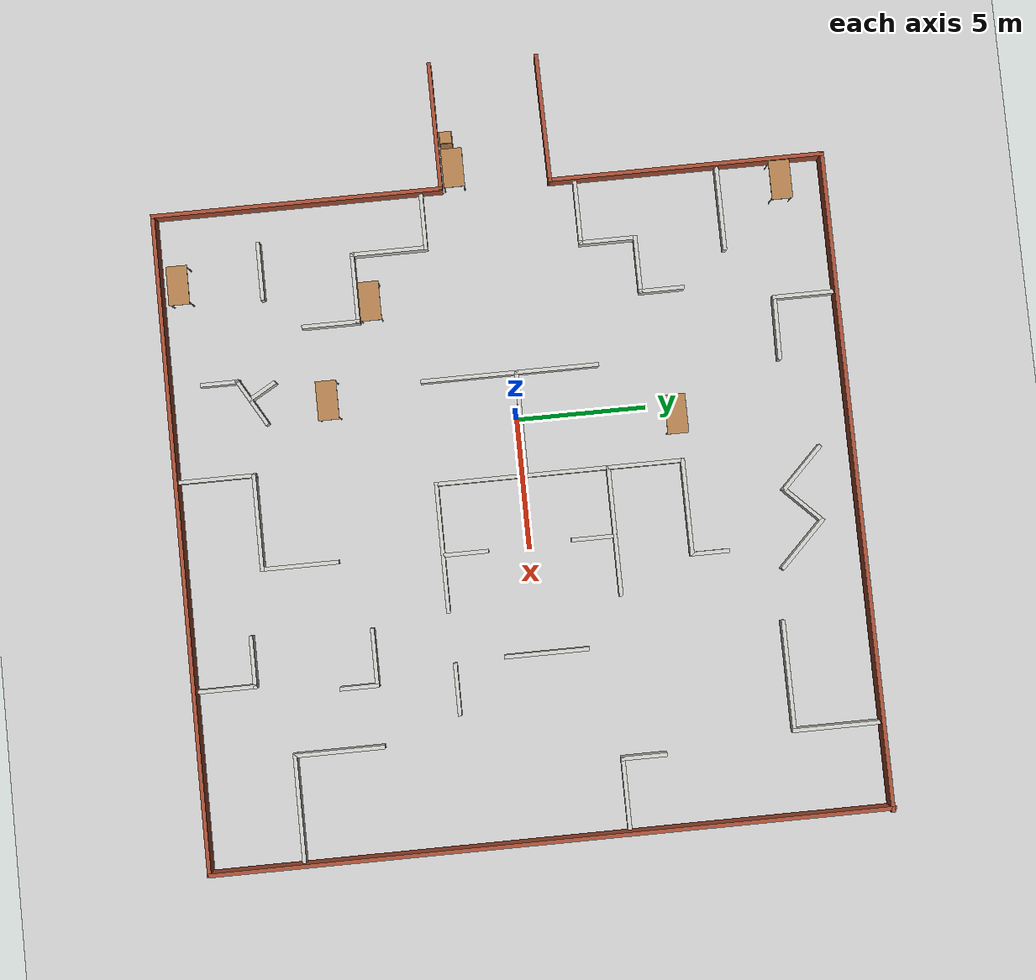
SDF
<sdf version="1.7">
 <world name="default">
  <model name="ground_plane">
   <static>1</static>
   <link name="link">
    <collision name="collision">
     <geometry><plane><normal>0 0 1</normal><size>100 100</size></plane></geometry>
     <surface><friction><ode><mu>100</mu><mu2>50</mu2></ode></friction></surface>
    </collision>
    <visual name="visual">
     <cast_shadows>0</cast_shadows>
     <geometry><plane><normal>0 0 1</normal><size>100 100</size></plane></geometry>
     <material>
      <script><uri>file://media/materials/scripts/gazebo.material</uri><name>Gazebo/Grey</name></script>
     </material>
    </visual>
   </link>
  </model>
  <model name="mywall">
   <static>1</static>
   <pose>1.08 -0.208 0 0 -0 0</pose>
   <link name="Wall_10">
    <collision name="Wall_10_Collision">
     <geometry><box><size>11.25 0.15 0.75</size></box></geometry>
     <pose>0 0 0.375 0 -0 0</pose>
    </collision>
    <visual name="Wall_10_Visual">
     <pose>0 0 0.375 0 -0 0</pose>
     <geometry><box><size>11.25 0.15 0.75</size></box></geometry>
     <material>
      <script><uri>file://media/materials/scripts/gazebo.material</uri><name>Gazebo/Bricks</name></script>
      <ambient>1 1 1 1</ambient>
     </material>
     <meta><layer>0</layer></meta>
    </visual>
    <pose>-10.158 -7.375 0 0 -0 -1.5708</pose>
   </link>
   <link name="Wall_101">
    <collision name="Wall_101_Collision">
     <geometry><box><size>1.5 0.15 0.5</size></box></geometry>
     <pose>0 0 0.25 0 -0 0</pose>
    </collision>
    <visual name="Wall_101_Visual">
     <pose>0 0 0.25 0 -0 0</pose>
     <geometry><box><size>1.5 0.15 0.5</size></box></geometry>
     <material>
      <script><uri>file://media/materials/scripts/gazebo.material</uri><name>Gazebo/CeilingTiled</name></script>
      <ambient>1 1 1 1</ambient>
     </material>
     <meta><layer>0</layer></meta>
    </visual>
    <pose>-3.532 -10.96 0 0 -0 -1.5708</pose>
   </link>
   <link name="Wall_12">
    <collision name="Wall_12_Collision">
     <geometry><box><size>25.25 0.15 0.75</size></box></geometry>
     <pose>0 0 0.375 0 -0 0</pose>
    </collision>
    <visual name="Wall_12_Visual">
     <pose>0 0 0.375 0 -0 0</pose>
     <geometry><box><size>25.25 0.15 0.75</size></box></geometry>
     <material>
      <script><uri>file://media/materials/scripts/gazebo.material</uri><name>Gazebo/Bricks</name></script>
      <ambient>1 1 1 1</ambient>
     </material>
     <meta><layer>0</layer></meta>
    </visual>
    <pose>2.392 -12.925 0 0 -0 0</pose>
   </link>
   <link name="Wall_13">
    <collision name="Wall_13_Collision">
     <geometry><box><size>26 0.15 0.75</size></box></geometry>
     <pose>0 0 0.375 0 -0 0</pose>
    </collision>
    <visual name="Wall_13_Visual">
     <pose>0 0 0.375 0 -0 0</pose>
     <geometry><box><size>26 0.15 0.75</size></box></geometry>
     <material>
      <script><uri>file://media/materials/scripts/gazebo.material</uri><name>Gazebo/Bricks</name></script>
      <ambient>1 1 1 1</ambient>
     </material>
     <meta><layer>0</layer></meta>
    </visual>
    <pose>14.942 0 0 0 -0 1.5708</pose>
   </link>
   <link name="Wall_155">
    <collision name="Wall_155_Collision">
     <geometry><box><size>1.75 0.15 0.5</size></box></geometry>
     <pose>0 0 0.25 0 -0 0</pose>
    </collision>
    <visual name="Wall_155_Visual">
     <pose>0 0 0.25 0 -0 0</pose>
     <geometry><box><size>1.75 0.15 0.5</size></box></geometry>
     <material>
      <script><uri>file://media/materials/scripts/gazebo.material</uri><name>Gazebo/CeilingTiled</name></script>
      <ambient>1 1 1 1</ambient>
     </material>
     <meta><layer>0</layer></meta>
    </visual>
    <pose>3.846 -2.208 0 0 -0 1.5708</pose>
   </link>
   <link name="Wall_16">
    <collision name="Wall_16_Collision">
     <geometry><box><size>25.25 0.15 0.75</size></box></geometry>
     <pose>0 0 0.375 0 -0 0</pose>
    </collision>
    <visual name="Wall_16_Visual">
     <pose>0 0 0.375 0 -0 0</pose>
     <geometry><box><size>25.25 0.15 0.75</size></box></geometry>
     <material>
      <script><uri>file://media/materials/scripts/gazebo.material</uri><name>Gazebo/Bricks</name></script>
      <ambient>1 1 1 1</ambient>
     </material>
     <meta><layer>0</layer></meta>
    </visual>
    <pose>2.458 12.874 0 0 -0 0</pose>
   </link>
   <link name="Wall_18">
    <collision name="Wall_18_Collision">
     <geometry><box><size>2.5 0.15 0.5</size></box></geometry>
     <pose>0 0 0.25 0 -0 0</pose>
    </collision>
    <visual name="Wall_18_Visual">
     <pose>0 0 0.25 0 -0 0</pose>
     <geometry><box><size>2.5 0.15 0.5</size></box></geometry>
     <material>
      <script><uri>file://media/materials/scripts/gazebo.material</uri><name>Gazebo/CeilingTiled</name></script>
      <ambient>1 1 1 1</ambient>
     </material>
     <meta><layer>0</layer></meta>
    </visual>
    <pose>-8.778 3.333 0 0 -0 0</pose>
   </link>
   <link name="Wall_20">
    <collision name="Wall_20_Collision">
     <geometry><box><size>2.25 0.15 0.5</size></box></geometry>
     <pose>0 0 0.25 0 -0 0</pose>
    </collision>
    <visual name="Wall_20_Visual">
     <pose>0 0 0.25 0 -0 0</pose>
     <geometry><box><size>2.25 0.15 0.5</size></box></geometry>
     <material>
      <script><uri>file://media/materials/scripts/gazebo.material</uri><name>Gazebo/CeilingTiled</name></script>
      <ambient>1 1 1 1</ambient>
     </material>
     <meta><layer>0</layer></meta>
    </visual>
    <pose>-7.603 4.383 0 0 -0 1.5708</pose>
   </link>
   <link name="Wall_21">
    <collision name="Wall_21_Collision">
     <geometry><box><size>2.25 0.15 0.5</size></box></geometry>
     <pose>0 0 0.25 0 -0 0</pose>
    </collision>
    <visual name="Wall_21_Visual">
     <pose>0 0 0.25 0 -0 0</pose>
     <geometry><box><size>2.25 0.15 0.5</size></box></geometry>
     <material>
      <script><uri>file://media/materials/scripts/gazebo.material</uri><name>Gazebo/CeilingTiled</name></script>
      <ambient>1 1 1 1</ambient>
     </material>
     <meta><layer>0</layer></meta>
    </visual>
    <pose>-6.553 5.433 0 0 -0 0</pose>
   </link>
   <link name="Wall_22">
    <collision name="Wall_22_Collision">
     <geometry><box><size>1.75 0.15 0.5</size></box></geometry>
     <pose>0 0 0.25 0 -0 0</pose>
    </collision>
    <visual name="Wall_22_Visual">
     <pose>0 0 0.25 0 -0 0</pose>
     <geometry><box><size>1.75 0.15 0.5</size></box></geometry>
     <material>
      <script><uri>file://media/materials/scripts/gazebo.material</uri><name>Gazebo/CeilingTiled</name></script>
      <ambient>1 1 1 1</ambient>
     </material>
     <meta><layer>0</layer></meta>
    </visual>
    <pose>-5.503 6.233 0 0 -0 1.5708</pose>
   </link>
   <link name="Wall_24">
    <collision name="Wall_24_Collision">
     <geometry><box><size>2.25 0.15 0.5</size></box></geometry>
     <pose>0 0 0.25 0 -0 0</pose>
    </collision>
    <visual name="Wall_24_Visual">
     <pose>0 0 0.25 0 -0 0</pose>
     <geometry><box><size>2.25 0.15 0.5</size></box></geometry>
     <material>
      <script><uri>file://media/materials/scripts/gazebo.material</uri><name>Gazebo/CeilingTiled</name></script>
      <ambient>1 1 1 1</ambient>
     </material>
     <meta><layer>0</layer></meta>
    </visual>
    <pose>-9.042 -2.622 0 0 -0 0</pose>
   </link>
   <link name="Wall_25">
    <collision name="Wall_25_Collision">
     <geometry><box><size>3 0.15 0.5</size></box></geometry>
     <pose>0 0 0.25 0 -0 0</pose>
    </collision>
    <visual name="Wall_25_Visual">
     <pose>0 0 0.25 0 -0 0</pose>
     <geometry><box><size>3 0.15 0.5</size></box></geometry>
     <material>
      <script><uri>file://media/materials/scripts/gazebo.material</uri><name>Gazebo/CeilingTiled</name></script>
      <ambient>1 1 1 1</ambient>
     </material>
     <meta><layer>0</layer></meta>
    </visual>
    <pose>-7.992 -4.047 0 0 -0 -1.5708</pose>
   </link>
   <link name="Wall_26">
    <collision name="Wall_26_Collision">
     <geometry><box><size>2.75 0.15 0.5</size></box></geometry>
     <pose>0 0 0.25 0 -0 0</pose>
    </collision>
    <visual name="Wall_26_Visual">
     <pose>0 0 0.25 0 -0 0</pose>
     <geometry><box><size>2.75 0.15 0.5</size></box></geometry>
     <material>
      <script><uri>file://media/materials/scripts/gazebo.material</uri><name>Gazebo/CeilingTiled</name></script>
      <ambient>1 1 1 1</ambient>
     </material>
     <meta><layer>0</layer></meta>
    </visual>
    <pose>-6.692 -5.472 0 0 -0 0</pose>
   </link>
   <link name="Wall_27">
    <collision name="Wall_27_Collision">
     <geometry><box><size>2.25 0.15 0.5</size></box></geometry>
     <pose>0 0 0.25 0 -0 0</pose>
    </collision>
    <visual name="Wall_27_Visual">
     <pose>0 0 0.25 0 -0 0</pose>
     <geometry><box><size>2.25 0.15 0.5</size></box></geometry>
     <material>
      <script><uri>file://media/materials/scripts/gazebo.material</uri><name>Gazebo/CeilingTiled</name></script>
      <ambient>1 1 1 1</ambient>
     </material>
     <meta><layer>0</layer></meta>
    </visual>
    <pose>-5.392 -6.522 0 0 -0 -1.5708</pose>
   </link>
   <link name="Wall_29">
    <collision name="Wall_29_Collision">
     <geometry><box><size>2.25 0.15 0.5</size></box></geometry>
     <pose>0 0 0.25 0 -0 0</pose>
    </collision>
    <visual name="Wall_29_Visual">
     <pose>0 0 0.25 0 -0 0</pose>
     <geometry><box><size>2.25 0.15 0.5</size></box></geometry>
     <material>
      <script><uri>file://media/materials/scripts/gazebo.material</uri><name>Gazebo/CeilingTiled</name></script>
      <ambient>1 1 1 1</ambient>
     </material>
     <meta><layer>0</layer></meta>
    </visual>
    <pose>-7.693 -9.042 0 0 -0 0</pose>
   </link>
   <link name="Wall_3">
    <collision name="Wall_3_Collision">
     <geometry><box><size>5 0.15 0.75</size></box></geometry>
     <pose>0 0 0.375 0 -0 0</pose>
    </collision>
    <visual name="Wall_3_Visual">
     <pose>0 0 0.375 0 -0 0</pose>
     <geometry><box><size>5 0.15 0.75</size></box></geometry>
     <material>
      <script><uri>file://media/materials/scripts/gazebo.material</uri><name>Gazebo/Bricks</name></script>
      <ambient>1 1 1 1</ambient>
     </material>
     <meta><layer>0</layer></meta>
    </visual>
    <pose>-12.517 2.355 0 0 -0 0.011134</pose>
   </link>
   <link name="Wall_31">
    <collision name="Wall_31_Collision">
     <geometry><box><size>3.25 0.15 0.5</size></box></geometry>
     <pose>0 0 0.25 0 -0 0</pose>
    </collision>
    <visual name="Wall_31_Visual">
     <pose>0 0 0.25 0 -0 0</pose>
     <geometry><box><size>3.25 0.15 0.5</size></box></geometry>
     <material>
      <script><uri>file://media/materials/scripts/gazebo.material</uri><name>Gazebo/CeilingTiled</name></script>
      <ambient>1 1 1 1</ambient>
     </material>
     <meta><layer>0</layer></meta>
    </visual>
    <pose>-8.403 8.823 0 0 -0 0</pose>
   </link>
   <link name="Wall_33">
    <collision name="Wall_33_Collision">
     <geometry><box><size>6.75 0.15 0.5</size></box></geometry>
     <pose>0 0 0.25 0 -0 0</pose>
    </collision>
    <visual name="Wall_33_Visual">
     <pose>0 0 0.25 0 -0 0</pose>
     <geometry><box><size>6.75 0.15 0.5</size></box></geometry>
     <material>
      <script><uri>file://media/materials/scripts/gazebo.material</uri><name>Gazebo/CeilingTiled</name></script>
      <ambient>1 1 1 1</ambient>
     </material>
     <meta><layer>0</layer></meta>
    </visual>
    <pose>1.12 0.22 0 0 -0 -1.5708</pose>
   </link>
   <link name="Wall_34">
    <collision name="Wall_34_Collision">
     <geometry><box><size>5 0.15 0.5</size></box></geometry>
     <pose>0 0 0.25 0 -0 0</pose>
    </collision>
    <visual name="Wall_34_Visual">
     <pose>0 0 0.25 0 -0 0</pose>
     <geometry><box><size>5 0.15 0.5</size></box></geometry>
     <material>
      <script><uri>file://media/materials/scripts/gazebo.material</uri><name>Gazebo/CeilingTiled</name></script>
      <ambient>1 1 1 1</ambient>
     </material>
     <meta><layer>0</layer></meta>
    </visual>
    <pose>3.545 -3.08 0 0 -0 0</pose>
   </link>
   <link name="Wall_36">
    <collision name="Wall_36_Collision">
     <geometry><box><size>5 0.15 0.5</size></box></geometry>
     <pose>0 0 0.25 0 -0 0</pose>
    </collision>
    <visual name="Wall_36_Visual">
     <pose>0 0 0.25 0 -0 0</pose>
     <geometry><box><size>5 0.15 0.5</size></box></geometry>
     <material>
      <script><uri>file://media/materials/scripts/gazebo.material</uri><name>Gazebo/CeilingTiled</name></script>
      <ambient>1 1 1 1</ambient>
     </material>
     <meta><layer>0</layer></meta>
    </visual>
    <pose>3.545 3.52 0 0 -0 0</pose>
   </link>
   <link name="Wall_38">
    <collision name="Wall_38_Collision">
     <geometry><box><size>1.75 0.15 0.5</size></box></geometry>
     <pose>0 0 0.25 0 -0 0</pose>
    </collision>
    <visual name="Wall_38_Visual">
     <pose>0 0 0.25 0 -0 0</pose>
     <geometry><box><size>1.75 0.15 0.5</size></box></geometry>
     <material>
      <script><uri>file://media/materials/scripts/gazebo.material</uri><name>Gazebo/CeilingTiled</name></script>
      <ambient>1 1 1 1</ambient>
     </material>
     <meta><layer>0</layer></meta>
    </visual>
    <pose>3.741 2.72 0 0 -0 -1.5708</pose>
   </link>
   <link name="Wall_45">
    <collision name="Wall_45_Collision">
     <geometry><box><size>4.25 0.15 0.5</size></box></geometry>
     <pose>0 0 0.25 0 -0 0</pose>
    </collision>
    <visual name="Wall_45_Visual">
     <pose>0 0 0.25 0 -0 0</pose>
     <geometry><box><size>4.25 0.15 0.5</size></box></geometry>
     <material>
      <script><uri>file://media/materials/scripts/gazebo.material</uri><name>Gazebo/CeilingTiled</name></script>
      <ambient>1 1 1 1</ambient>
     </material>
     <meta><layer>0</layer></meta>
    </visual>
    <pose>12.888 -9.368 0 0 -0 3.14159</pose>
   </link>
   <link name="Wall_47">
    <collision name="Wall_47_Collision">
     <geometry><box><size>3.5 0.15 0.5</size></box></geometry>
     <pose>0 0 0.25 0 -0 0</pose>
    </collision>
    <visual name="Wall_47_Visual">
     <pose>0 0 0.25 0 -0 0</pose>
     <geometry><box><size>3.5 0.15 0.5</size></box></geometry>
     <material>
      <script><uri>file://media/materials/scripts/gazebo.material</uri><name>Gazebo/CeilingTiled</name></script>
      <ambient>1 1 1 1</ambient>
     </material>
     <meta><layer>0</layer></meta>
    </visual>
    <pose>10.838 -7.693 0 0 -0 1.5708</pose>
   </link>
   <link name="Wall_49">
    <collision name="Wall_49_Collision">
     <geometry><box><size>3.5 0.15 0.5</size></box></geometry>
     <pose>0 0 0.25 0 -0 0</pose>
    </collision>
    <visual name="Wall_49_Visual">
     <pose>0 0 0.25 0 -0 0</pose>
     <geometry><box><size>3.5 0.15 0.5</size></box></geometry>
     <material>
      <script><uri>file://media/materials/scripts/gazebo.material</uri><name>Gazebo/CeilingTiled</name></script>
      <ambient>1 1 1 1</ambient>
     </material>
     <meta><layer>0</layer></meta>
    </visual>
    <pose>11.728 11.213 0 0 -0 -1.5708</pose>
   </link>
   <link name="Wall_50">
    <collision name="Wall_50_Collision">
     <geometry><box><size>4.25 0.15 0.5</size></box></geometry>
     <pose>0 0 0.25 0 -0 0</pose>
    </collision>
    <visual name="Wall_50_Visual">
     <pose>0 0 0.25 0 -0 0</pose>
     <geometry><box><size>4.25 0.15 0.5</size></box></geometry>
     <material>
      <script><uri>file://media/materials/scripts/gazebo.material</uri><name>Gazebo/CeilingTiled</name></script>
      <ambient>1 1 1 1</ambient>
     </material>
     <meta><layer>0</layer></meta>
    </visual>
    <pose>9.678 9.538 0 0 -0 3.14159</pose>
   </link>
   <link name="Wall_52">
    <collision name="Wall_52_Collision">
     <geometry><box><size>3 0.15 0.5</size></box></geometry>
     <pose>0 0 0.25 0 -0 0</pose>
    </collision>
    <visual name="Wall_52_Visual">
     <pose>0 0 0.25 0 -0 0</pose>
     <geometry><box><size>3 0.15 0.5</size></box></geometry>
     <material>
      <script><uri>file://media/materials/scripts/gazebo.material</uri><name>Gazebo/CeilingTiled</name></script>
      <ambient>1 1 1 1</ambient>
     </material>
     <meta><layer>0</layer></meta>
    </visual>
    <pose>0.106 -11.404 0 0 -0 1.5708</pose>
   </link>
   <link name="Wall_54">
    <collision name="Wall_54_Collision">
     <geometry><box><size>3.75 0.15 0.5</size></box></geometry>
     <pose>0 0 0.25 0 -0 0</pose>
    </collision>
    <visual name="Wall_54_Visual">
     <pose>0 0 0.25 0 -0 0</pose>
     <geometry><box><size>3.75 0.15 0.5</size></box></geometry>
     <material>
      <script><uri>file://media/materials/scripts/gazebo.material</uri><name>Gazebo/CeilingTiled</name></script>
      <ambient>1 1 1 1</ambient>
     </material>
     <meta><layer>0</layer></meta>
    </visual>
    <pose>1.906 -9.979 0 0 -0 0</pose>
   </link>
   <link name="Wall_55">
    <collision name="Wall_55_Collision">
     <geometry><box><size>3 0.15 0.5</size></box></geometry>
     <pose>0 0 0.25 0 -0 0</pose>
    </collision>
    <visual name="Wall_55_Visual">
     <pose>0 0 0.25 0 -0 0</pose>
     <geometry><box><size>3 0.15 0.5</size></box></geometry>
     <material>
      <script><uri>file://media/materials/scripts/gazebo.material</uri><name>Gazebo/CeilingTiled</name></script>
      <ambient>1 1 1 1</ambient>
     </material>
     <meta><layer>0</layer></meta>
    </visual>
    <pose>3.706 -8.554 0 0 -0 1.5708</pose>
   </link>
   <link name="Wall_57">
    <collision name="Wall_57_Collision">
     <geometry><box><size>4 0.15 0.5</size></box></geometry>
     <pose>0 0 0.25 0 -0 0</pose>
    </collision>
    <visual name="Wall_57_Visual">
     <pose>0 0 0.25 0 -0 0</pose>
     <geometry><box><size>4 0.15 0.5</size></box></geometry>
     <material>
      <script><uri>file://media/materials/scripts/gazebo.material</uri><name>Gazebo/CeilingTiled</name></script>
      <ambient>1 1 1 1</ambient>
     </material>
     <meta><layer>0</layer></meta>
    </visual>
    <pose>-0.93 0.378 0 0 -0 3.14159</pose>
   </link>
   <link name="Wall_58">
    <collision name="Wall_58_Collision">
     <geometry><box><size>3.75 0.15 0.5</size></box></geometry>
     <pose>0 0 0.25 0 -0 0</pose>
    </collision>
    <visual name="Wall_58_Visual">
     <pose>0 0 0.25 0 -0 0</pose>
     <geometry><box><size>3.75 0.15 0.5</size></box></geometry>
     <material>
      <script><uri>file://media/materials/scripts/gazebo.material</uri><name>Gazebo/CeilingTiled</name></script>
      <ambient>1 1 1 1</ambient>
     </material>
     <meta><layer>0</layer></meta>
    </visual>
    <pose>-2.855 -1.422 0 0 -0 -1.5708</pose>
   </link>
   <link name="Wall_6">
    <collision name="Wall_6_Collision">
     <geometry><box><size>5 0.15 0.75</size></box></geometry>
     <pose>0 0 0.375 0 -0 0</pose>
    </collision>
    <visual name="Wall_6_Visual">
     <pose>0 0 0.375 0 -0 0</pose>
     <geometry><box><size>5 0.15 0.75</size></box></geometry>
     <material>
      <script><uri>file://media/materials/scripts/gazebo.material</uri><name>Gazebo/Bricks</name></script>
      <ambient>1 1 1 1</ambient>
     </material>
     <meta><layer>0</layer></meta>
    </visual>
    <pose>-12.583 -1.825 0 0 -0 0</pose>
   </link>
   <link name="Wall_60">
    <collision name="Wall_60_Collision">
     <geometry><box><size>3.25 0.15 0.5</size></box></geometry>
     <pose>0 0 0.25 0 -0 0</pose>
    </collision>
    <visual name="Wall_60_Visual">
     <pose>0 0 0.25 0 -0 0</pose>
     <geometry><box><size>3.25 0.15 0.5</size></box></geometry>
     <material>
      <script><uri>file://media/materials/scripts/gazebo.material</uri><name>Gazebo/CeilingTiled</name></script>
      <ambient>1 1 1 1</ambient>
     </material>
     <meta><layer>0</layer></meta>
    </visual>
    <pose>-2.855 1.928 0 0 -0 1.5708</pose>
   </link>
   <link name="Wall_62">
    <collision name="Wall_62_Collision">
     <geometry><box><size>2.25 0.15 0.5</size></box></geometry>
     <pose>0 0 0.25 0 -0 0</pose>
    </collision>
    <visual name="Wall_62_Visual">
     <pose>0 0 0.25 0 -0 0</pose>
     <geometry><box><size>2.25 0.15 0.5</size></box></geometry>
     <material>
      <script><uri>file://media/materials/scripts/gazebo.material</uri><name>Gazebo/CeilingTiled</name></script>
      <ambient>1 1 1 1</ambient>
     </material>
     <meta><layer>0</layer></meta>
    </visual>
    <pose>8.096 -11.686 0 0 -0 1.5708</pose>
   </link>
   <link name="Wall_63">
    <collision name="Wall_63_Collision">
     <geometry><box><size>2 0.15 0.5</size></box></geometry>
     <pose>0 0 0.25 0 -0 0</pose>
    </collision>
    <visual name="Wall_63_Visual">
     <pose>0 0 0.25 0 -0 0</pose>
     <geometry><box><size>2 0.15 0.5</size></box></geometry>
     <material>
      <script><uri>file://media/materials/scripts/gazebo.material</uri><name>Gazebo/CeilingTiled</name></script>
      <ambient>1 1 1 1</ambient>
     </material>
     <meta><layer>0</layer></meta>
    </visual>
    <pose>7.171 -10.636 0 0 -0 3.14159</pose>
   </link>
   <link name="Wall_65">
    <collision name="Wall_65_Collision">
     <geometry><box><size>1.25 0.15 0.5</size></box></geometry>
     <pose>0 0 0.25 0 -0 0</pose>
    </collision>
    <visual name="Wall_65_Visual">
     <pose>0 0 0.25 0 -0 0</pose>
     <geometry><box><size>1.25 0.15 0.5</size></box></geometry>
     <material>
      <script><uri>file://media/materials/scripts/gazebo.material</uri><name>Gazebo/CeilingTiled</name></script>
      <ambient>1 1 1 1</ambient>
     </material>
     <meta><layer>0</layer></meta>
    </visual>
    <pose>-3.07 -9.3835 0 0 -0 -1.04737</pose>
   </link>
   <link name="Wall_66">
    <collision name="Wall_66_Collision">
     <geometry><box><size>1.25 0.15 0.5</size></box></geometry>
     <pose>0 0 0.25 0 -0 0</pose>
    </collision>
    <visual name="Wall_66_Visual">
     <pose>0 0 0.25 0 -0 0</pose>
     <geometry><box><size>1.25 0.15 0.5</size></box></geometry>
     <material>
      <script><uri>file://media/materials/scripts/gazebo.material</uri><name>Gazebo/CeilingTiled</name></script>
      <ambient>1 1 1 1</ambient>
     </material>
     <meta><layer>0</layer></meta>
    </visual>
    <pose>-2.319 -9.585 0 0 -0 0.523884</pose>
   </link>
   <link name="Wall_68">
    <collision name="Wall_68_Collision">
     <geometry><box><size>1 0.15 0.5</size></box></geometry>
     <pose>0 0 0.25 0 -0 0</pose>
    </collision>
    <visual name="Wall_68_Visual">
     <pose>0 0 0.25 0 -0 0</pose>
     <geometry><box><size>1 0.15 0.5</size></box></geometry>
     <material>
      <script><uri>file://media/materials/scripts/gazebo.material</uri><name>Gazebo/CeilingTiled</name></script>
      <ambient>1 1 1 1</ambient>
     </material>
     <meta><layer>0</layer></meta>
    </visual>
    <pose>-3.1635 -10.0725 0 0 -0 -2.61851</pose>
   </link>
   <link name="Wall_71">
    <collision name="Wall_71_Collision">
     <geometry><box><size>3 0.15 0.5</size></box></geometry>
     <pose>0 0 0.25 0 -0 0</pose>
    </collision>
    <visual name="Wall_71_Visual">
     <pose>0 0 0.25 0 -0 0</pose>
     <geometry><box><size>3 0.15 0.5</size></box></geometry>
     <material>
      <script><uri>file://media/materials/scripts/gazebo.material</uri><name>Gazebo/CeilingTiled</name></script>
      <ambient>1 1 1 1</ambient>
     </material>
     <meta><layer>0</layer></meta>
    </visual>
    <pose>1.12 4.945 0 0 -0 1.5708</pose>
   </link>
   <link name="Wall_72">
    <collision name="Wall_72_Collision">
     <geometry><box><size>3.75 0.15 0.5</size></box></geometry>
     <pose>0 0 0.25 0 -0 0</pose>
    </collision>
    <visual name="Wall_72_Visual">
     <pose>0 0 0.25 0 -0 0</pose>
     <geometry><box><size>3.75 0.15 0.5</size></box></geometry>
     <material>
      <script><uri>file://media/materials/scripts/gazebo.material</uri><name>Gazebo/CeilingTiled</name></script>
      <ambient>1 1 1 1</ambient>
     </material>
     <meta><layer>0</layer></meta>
    </visual>
    <pose>2.92 6.37 0 0 -0 0</pose>
   </link>
   <link name="Wall_73">
    <collision name="Wall_73_Collision">
     <geometry><box><size>1.5 0.15 0.5</size></box></geometry>
     <pose>0 0 0.25 0 -0 0</pose>
    </collision>
    <visual name="Wall_73_Visual">
     <pose>0 0 0.25 0 -0 0</pose>
     <geometry><box><size>1.5 0.15 0.5</size></box></geometry>
     <material>
      <script><uri>file://media/materials/scripts/gazebo.material</uri><name>Gazebo/CeilingTiled</name></script>
      <ambient>1 1 1 1</ambient>
     </material>
     <meta><layer>0</layer></meta>
    </visual>
    <pose>4.72 7.045 0 0 -0 1.5708</pose>
   </link>
   <link name="Wall_75">
    <collision name="Wall_75_Collision">
     <geometry><box><size>2.75 0.15 0.5</size></box></geometry>
     <pose>0 0 0.25 0 -0 0</pose>
    </collision>
    <visual name="Wall_75_Visual">
     <pose>0 0 0.25 0 -0 0</pose>
     <geometry><box><size>2.75 0.15 0.5</size></box></geometry>
     <material>
      <script><uri>file://media/materials/scripts/gazebo.material</uri><name>Gazebo/CeilingTiled</name></script>
      <ambient>1 1 1 1</ambient>
     </material>
     <meta><layer>0</layer></meta>
    </visual>
    <pose>13.451 2.966 0 0 -0 3.14159</pose>
   </link>
   <link name="Wall_78">
    <collision name="Wall_78_Collision">
     <geometry><box><size>2.40642 0.15 0.5</size></box></geometry>
     <pose>0 0 0.25 0 -0 0</pose>
    </collision>
    <visual name="Wall_78_Visual">
     <pose>0 0 0.25 0 -0 0</pose>
     <geometry><box><size>2.40642 0.15 0.5</size></box></geometry>
     <material>
      <script><uri>file://media/materials/scripts/gazebo.material</uri><name>Gazebo/CeilingTiled</name></script>
      <ambient>1 1 1 1</ambient>
     </material>
     <meta><layer>0</layer></meta>
    </visual>
    <pose>-4.779 11.655 0 0 -0 -1.5708</pose>
   </link>
   <link name="Wall_79">
    <collision name="Wall_79_Collision">
     <geometry><box><size>2.5 0.15 0.5</size></box></geometry>
     <pose>0 0 0.25 0 -0 0</pose>
    </collision>
    <visual name="Wall_79_Visual">
     <pose>0 0 0.25 0 -0 0</pose>
     <geometry><box><size>2.5 0.15 0.5</size></box></geometry>
     <material>
      <script><uri>file://media/materials/scripts/gazebo.material</uri><name>Gazebo/CeilingTiled</name></script>
      <ambient>1 1 1 1</ambient>
     </material>
     <meta><layer>0</layer></meta>
    </visual>
    <pose>-3.604 10.5035 0 0 -0 -0.019997</pose>
   </link>
   <link name="Wall_8">
    <collision name="Wall_8_Collision">
     <geometry><box><size>10.6425 0.15 0.75</size></box></geometry>
     <pose>0 0 0.375 0 -0 0</pose>
    </collision>
    <visual name="Wall_8_Visual">
     <pose>0 0 0.375 0 -0 0</pose>
     <geometry><box><size>10.6425 0.15 0.75</size></box></geometry>
     <material>
      <script><uri>file://media/materials/scripts/gazebo.material</uri><name>Gazebo/Bricks</name></script>
      <ambient>1 1 1 1</ambient>
     </material>
     <meta><layer>0</layer></meta>
    </visual>
    <pose>-10.092 7.628 0 0 -0 1.5708</pose>
   </link>
   <link name="Wall_81">
    <collision name="Wall_81_Collision">
     <geometry><box><size>1.75 0.15 0.5</size></box></geometry>
     <pose>0 0 0.25 0 -0 0</pose>
    </collision>
    <visual name="Wall_81_Visual">
     <pose>0 0 0.25 0 -0 0</pose>
     <geometry><box><size>1.75 0.15 0.5</size></box></geometry>
     <material>
      <script><uri>file://media/materials/scripts/gazebo.material</uri><name>Gazebo/CeilingTiled</name></script>
      <ambient>1 1 1 1</ambient>
     </material>
     <meta><layer>0</layer></meta>
    </visual>
    <pose>12.151 3.766 0 0 -0 1.5708</pose>
   </link>
   <link name="Wall_84">
    <collision name="Wall_84_Collision">
     <geometry><box><size>3.25 0.15 0.5</size></box></geometry>
     <pose>0 0 0.25 0 -0 0</pose>
    </collision>
    <visual name="Wall_84_Visual">
     <pose>0 0 0.25 0 -0 0</pose>
     <geometry><box><size>3.25 0.15 0.5</size></box></geometry>
     <material>
      <script><uri>file://media/materials/scripts/gazebo.material</uri><name>Gazebo/CeilingTiled</name></script>
      <ambient>1 1 1 1</ambient>
     </material>
     <meta><layer>0</layer></meta>
    </visual>
    <pose>7.907 0.492 0 0 -0 -1.5708</pose>
   </link>
   <link name="Wall_86">
    <collision name="Wall_86_Collision">
     <geometry><box><size>2 0.15 0.5</size></box></geometry>
     <pose>0 0 0.25 0 -0 0</pose>
    </collision>
    <visual name="Wall_86_Visual">
     <pose>0 0 0.25 0 -0 0</pose>
     <geometry><box><size>2 0.15 0.5</size></box></geometry>
     <material>
      <script><uri>file://media/materials/scripts/gazebo.material</uri><name>Gazebo/CeilingTiled</name></script>
      <ambient>1 1 1 1</ambient>
     </material>
     <meta><layer>0</layer></meta>
    </visual>
    <pose>8.956 -3.013 0 0 -0 0</pose>
   </link>
   <link name="Wall_88">
    <collision name="Wall_88_Collision">
     <geometry><box><size>2.25 0.15 0.5</size></box></geometry>
     <pose>0 0 0.25 0 -0 0</pose>
    </collision>
    <visual name="Wall_88_Visual">
     <pose>0 0 0.25 0 -0 0</pose>
     <geometry><box><size>2.25 0.15 0.5</size></box></geometry>
     <material>
      <script><uri>file://media/materials/scripts/gazebo.material</uri><name>Gazebo/CeilingTiled</name></script>
      <ambient>1 1 1 1</ambient>
     </material>
     <meta><layer>0</layer></meta>
    </visual>
    <pose>7.454 -6.021 0 0 -0 0</pose>
   </link>
   <link name="Wall_89">
    <collision name="Wall_89_Collision">
     <geometry><box><size>1.5 0.15 0.5</size></box></geometry>
     <pose>0 0 0.25 0 -0 0</pose>
    </collision>
    <visual name="Wall_89_Visual">
     <pose>0 0 0.25 0 -0 0</pose>
     <geometry><box><size>1.5 0.15 0.5</size></box></geometry>
     <material>
      <script><uri>file://media/materials/scripts/gazebo.material</uri><name>Gazebo/CeilingTiled</name></script>
      <ambient>1 1 1 1</ambient>
     </material>
     <meta><layer>0</layer></meta>
    </visual>
    <pose>8.504 -6.696 0 0 -0 -1.5708</pose>
   </link>
   <link name="Wall_95">
    <collision name="Wall_95_Collision">
     <geometry><box><size>2.25 0.15 0.5</size></box></geometry>
     <pose>0 0 0.25 0 -0 0</pose>
    </collision>
    <visual name="Wall_95_Visual">
     <pose>0 0 0.25 0 -0 0</pose>
     <geometry><box><size>2.25 0.15 0.5</size></box></geometry>
     <material>
      <script><uri>file://media/materials/scripts/gazebo.material</uri><name>Gazebo/CeilingTiled</name></script>
      <ambient>1 1 1 1</ambient>
     </material>
     <meta><layer>0</layer></meta>
    </visual>
    <pose>1.8635 10.8755 0 0 -0 -0.785398</pose>
   </link>
   <link name="Wall_96">
    <collision name="Wall_96_Collision">
     <geometry><box><size>2 0.15 0.5</size></box></geometry>
     <pose>0 0 0.25 0 -0 0</pose>
    </collision>
    <visual name="Wall_96_Visual">
     <pose>0 0 0.25 0 -0 0</pose>
     <geometry><box><size>2 0.15 0.5</size></box></geometry>
     <material>
      <script><uri>file://media/materials/scripts/gazebo.material</uri><name>Gazebo/CeilingTiled</name></script>
      <ambient>1 1 1 1</ambient>
     </material>
     <meta><layer>0</layer></meta>
    </visual>
    <pose>3.26 10.787 0 0 -0 0.785398</pose>
   </link>
   <link name="Wall_97">
    <collision name="Wall_97_Collision">
     <geometry><box><size>2.5 0.15 0.5</size></box></geometry>
     <pose>0 0 0.25 0 -0 0</pose>
    </collision>
    <visual name="Wall_97_Visual">
     <pose>0 0 0.25 0 -0 0</pose>
     <geometry><box><size>2.5 0.15 0.5</size></box></geometry>
     <material>
      <script><uri>file://media/materials/scripts/gazebo.material</uri><name>Gazebo/CeilingTiled</name></script>
      <ambient>1 1 1 1</ambient>
     </material>
     <meta><layer>0</layer></meta>
    </visual>
    <pose>4.745 10.61 0 0 -0 -0.785398</pose>
   </link>
   <static>1</static>
  </model>
  <model name="table">
   <static>1</static>
   <link name="link">
    <collision name="surface">
     <pose>0 0 1 0 -0 0</pose>
     <geometry><box><size>1.5 0.8 0.03</size></box></geometry>
     <surface><friction><ode><mu>0.6</mu><mu2>0.6</mu2></ode></friction></surface>
    </collision>
    <visual name="visual1">
     <pose>0 0 1 0 -0 0</pose>
     <geometry><box><size>1.5 0.8 0.03</size></box></geometry>
     <material>
      <script><uri>file://media/materials/scripts/gazebo.material</uri><name>Gazebo/Wood</name></script>
     </material>
    </visual>
    <collision name="front_left_leg">
     <pose>0.68 0.38 0.5 0 -0 0</pose>
     <geometry><cylinder><radius>0.02</radius><length>1</length></cylinder></geometry>
    </collision>
    <visual name="front_left_leg">
     <pose>0.68 0.38 0.5 0 -0 0</pose>
     <geometry><cylinder><radius>0.02</radius><length>1</length></cylinder></geometry>
     <material>
      <script><uri>file://media/materials/scripts/gazebo.material</uri><name>Gazebo/Grey</name></script>
     </material>
    </visual>
    <collision name="front_right_leg">
     <pose>0.68 -0.38 0.5 0 -0 0</pose>
     <geometry><cylinder><radius>0.02</radius><length>1</length></cylinder></geometry>
    </collision>
    <visual name="front_right_leg">
     <pose>0.68 -0.38 0.5 0 -0 0</pose>
     <geometry><cylinder><radius>0.02</radius><length>1</length></cylinder></geometry>
     <material>
      <script><uri>file://media/materials/scripts/gazebo.material</uri><name>Gazebo/Grey</name></script>
     </material>
    </visual>
    <collision name="back_right_leg">
     <pose>-0.68 -0.38 0.5 0 -0 0</pose>
     <geometry><cylinder><radius>0.02</radius><length>1</length></cylinder></geometry>
    </collision>
    <visual name="back_right_leg">
     <pose>-0.68 -0.38 0.5 0 -0 0</pose>
     <geometry><cylinder><radius>0.02</radius><length>1</length></cylinder></geometry>
     <material>
      <script><uri>file://media/materials/scripts/gazebo.material</uri><name>Gazebo/Grey</name></script>
     </material>
    </visual>
    <collision name="back_left_leg">
     <pose>-0.68 0.38 0.5 0 -0 0</pose>
     <geometry><cylinder><radius>0.02</radius><length>1</length></cylinder></geometry>
    </collision>
    <visual name="back_left_leg">
     <pose>-0.68 0.38 0.5 0 -0 0</pose>
     <geometry><cylinder><radius>0.02</radius><length>1</length></cylinder></geometry>
     <material>
      <script><uri>file://media/materials/scripts/gazebo.material</uri><name>Gazebo/Grey</name></script>
     </material>
    </visual>
   </link>
   <pose>-4.9723 -5.12914 0 0 -0 0</pose>
  </model>
  <model name="table_clone">
   <static>1</static>
   <link name="link">
    <collision name="surface">
     <pose>0 0 1 0 -0 0</pose>
     <geometry><box><size>1.5 0.8 0.03</size></box></geometry>
     <surface><friction><ode><mu>0.6</mu><mu2>0.6</mu2></ode></friction></surface>
    </collision>
    <visual name="visual1">
     <pose>0 0 1 0 -0 0</pose>
     <geometry><box><size>1.5 0.8 0.03</size></box></geometry>
     <material>
      <script><uri>file://media/materials/scripts/gazebo.material</uri><name>Gazebo/Wood</name></script>
     </material>
    </visual>
    <collision name="front_left_leg">
     <pose>0.68 0.38 0.5 0 -0 0</pose>
     <geometry><cylinder><radius>0.02</radius><length>1</length></cylinder></geometry>
    </collision>
    <visual name="front_left_leg">
     <pose>0.68 0.38 0.5 0 -0 0</pose>
     <geometry><cylinder><radius>0.02</radius><length>1</length></cylinder></geometry>
     <material>
      <script><uri>file://media/materials/scripts/gazebo.material</uri><name>Gazebo/Grey</name></script>
     </material>
    </visual>
    <collision name="front_right_leg">
     <pose>0.68 -0.38 0.5 0 -0 0</pose>
     <geometry><cylinder><radius>0.02</radius><length>1</length></cylinder></geometry>
    </collision>
    <visual name="front_right_leg">
     <pose>0.68 -0.38 0.5 0 -0 0</pose>
     <geometry><cylinder><radius>0.02</radius><length>1</length></cylinder></geometry>
     <material>
      <script><uri>file://media/materials/scripts/gazebo.material</uri><name>Gazebo/Grey</name></script>
     </material>
    </visual>
    <collision name="back_right_leg">
     <pose>-0.68 -0.38 0.5 0 -0 0</pose>
     <geometry><cylinder><radius>0.02</radius><length>1</length></cylinder></geometry>
    </collision>
    <visual name="back_right_leg">
     <pose>-0.68 -0.38 0.5 0 -0 0</pose>
     <geometry><cylinder><radius>0.02</radius><length>1</length></cylinder></geometry>
     <material>
      <script><uri>file://media/materials/scripts/gazebo.material</uri><name>Gazebo/Grey</name></script>
     </material>
    </visual>
    <collision name="back_left_leg">
     <pose>-0.68 0.38 0.5 0 -0 0</pose>
     <geometry><cylinder><radius>0.02</radius><length>1</length></cylinder></geometry>
    </collision>
    <visual name="back_left_leg">
     <pose>-0.68 0.38 0.5 0 -0 0</pose>
     <geometry><cylinder><radius>0.02</radius><length>1</length></cylinder></geometry>
     <material>
      <script><uri>file://media/materials/scripts/gazebo.material</uri><name>Gazebo/Grey</name></script>
     </material>
    </visual>
   </link>
   <pose>0.444459 6.05097 0 0 -0 0</pose>
  </model>
  <model name="table_clone_clone">
   <static>1</static>
   <link name="link">
    <collision name="surface">
     <pose>0 0 1 0 -0 0</pose>
     <geometry><box><size>1.5 0.8 0.03</size></box></geometry>
     <surface><friction><ode><mu>0.6</mu><mu2>0.6</mu2></ode></friction></surface>
    </collision>
    <visual name="visual1">
     <pose>0 0 1 0 -0 0</pose>
     <geometry><box><size>1.5 0.8 0.03</size></box></geometry>
     <material>
      <script><uri>file://media/materials/scripts/gazebo.material</uri><name>Gazebo/Wood</name></script>
     </material>
    </visual>
    <collision name="front_left_leg">
     <pose>0.68 0.38 0.5 0 -0 0</pose>
     <geometry><cylinder><radius>0.02</radius><length>1</length></cylinder></geometry>
    </collision>
    <visual name="front_left_leg">
     <pose>0.68 0.38 0.5 0 -0 0</pose>
     <geometry><cylinder><radius>0.02</radius><length>1</length></cylinder></geometry>
     <material>
      <script><uri>file://media/materials/scripts/gazebo.material</uri><name>Gazebo/Grey</name></script>
     </material>
    </visual>
    <collision name="front_right_leg">
     <pose>0.68 -0.38 0.5 0 -0 0</pose>
     <geometry><cylinder><radius>0.02</radius><length>1</length></cylinder></geometry>
    </collision>
    <visual name="front_right_leg">
     <pose>0.68 -0.38 0.5 0 -0 0</pose>
     <geometry><cylinder><radius>0.02</radius><length>1</length></cylinder></geometry>
     <material>
      <script><uri>file://media/materials/scripts/gazebo.material</uri><name>Gazebo/Grey</name></script>
     </material>
    </visual>
    <collision name="back_right_leg">
     <pose>-0.68 -0.38 0.5 0 -0 0</pose>
     <geometry><cylinder><radius>0.02</radius><length>1</length></cylinder></geometry>
    </collision>
    <visual name="back_right_leg">
     <pose>-0.68 -0.38 0.5 0 -0 0</pose>
     <geometry><cylinder><radius>0.02</radius><length>1</length></cylinder></geometry>
     <material>
      <script><uri>file://media/materials/scripts/gazebo.material</uri><name>Gazebo/Grey</name></script>
     </material>
    </visual>
    <collision name="back_left_leg">
     <pose>-0.68 0.38 0.5 0 -0 0</pose>
     <geometry><cylinder><radius>0.02</radius><length>1</length></cylinder></geometry>
    </collision>
    <visual name="back_left_leg">
     <pose>-0.68 0.38 0.5 0 -0 0</pose>
     <geometry><cylinder><radius>0.02</radius><length>1</length></cylinder></geometry>
     <material>
      <script><uri>file://media/materials/scripts/gazebo.material</uri><name>Gazebo/Grey</name></script>
     </material>
    </visual>
   </link>
   <pose>-8.10257 10.9314 0 0 -0 0</pose>
  </model>
  <model name="table_clone_0">
   <static>1</static>
   <link name="link">
    <collision name="surface">
     <pose>0 0 1 0 -0 0</pose>
     <geometry><box><size>1.5 0.8 0.03</size></box></geometry>
     <surface><friction><ode><mu>0.6</mu><mu2>0.6</mu2></ode></friction></surface>
    </collision>
    <visual name="visual1">
     <pose>0 0 1 0 -0 0</pose>
     <geometry><box><size>1.5 0.8 0.03</size></box></geometry>
     <material>
      <script><uri>file://media/materials/scripts/gazebo.material</uri><name>Gazebo/Wood</name></script>
     </material>
    </visual>
    <collision name="front_left_leg">
     <pose>0.68 0.38 0.5 0 -0 0</pose>
     <geometry><cylinder><radius>0.02</radius><length>1</length></cylinder></geometry>
    </collision>
    <visual name="front_left_leg">
     <pose>0.68 0.38 0.5 0 -0 0</pose>
     <geometry><cylinder><radius>0.02</radius><length>1</length></cylinder></geometry>
     <material>
      <script><uri>file://media/materials/scripts/gazebo.material</uri><name>Gazebo/Grey</name></script>
     </material>
    </visual>
    <collision name="front_right_leg">
     <pose>0.68 -0.38 0.5 0 -0 0</pose>
     <geometry><cylinder><radius>0.02</radius><length>1</length></cylinder></geometry>
    </collision>
    <visual name="front_right_leg">
     <pose>0.68 -0.38 0.5 0 -0 0</pose>
     <geometry><cylinder><radius>0.02</radius><length>1</length></cylinder></geometry>
     <material>
      <script><uri>file://media/materials/scripts/gazebo.material</uri><name>Gazebo/Grey</name></script>
     </material>
    </visual>
    <collision name="back_right_leg">
     <pose>-0.68 -0.38 0.5 0 -0 0</pose>
     <geometry><cylinder><radius>0.02</radius><length>1</length></cylinder></geometry>
    </collision>
    <visual name="back_right_leg">
     <pose>-0.68 -0.38 0.5 0 -0 0</pose>
     <geometry><cylinder><radius>0.02</radius><length>1</length></cylinder></geometry>
     <material>
      <script><uri>file://media/materials/scripts/gazebo.material</uri><name>Gazebo/Grey</name></script>
     </material>
    </visual>
    <collision name="back_left_leg">
     <pose>-0.68 0.38 0.5 0 -0 0</pose>
     <geometry><cylinder><radius>0.02</radius><length>1</length></cylinder></geometry>
    </collision>
    <visual name="back_left_leg">
     <pose>-0.68 0.38 0.5 0 -0 0</pose>
     <geometry><cylinder><radius>0.02</radius><length>1</length></cylinder></geometry>
     <material>
      <script><uri>file://media/materials/scripts/gazebo.material</uri><name>Gazebo/Grey</name></script>
     </material>
    </visual>
   </link>
   <pose>-1.35096 -7.07816 0 0 -0 0</pose>
  </model>
  <model name="table_clone_2">
   <static>1</static>
   <link name="link">
    <collision name="surface">
     <pose>0 0 1 0 -0 0</pose>
     <geometry><box><size>1.5 0.8 0.03</size></box></geometry>
     <surface><friction><ode><mu>0.6</mu><mu2>0.6</mu2></ode></friction></surface>
    </collision>
    <visual name="visual1">
     <pose>0 0 1 0 -0 0</pose>
     <geometry><box><size>1.5 0.8 0.03</size></box></geometry>
     <material>
      <script><uri>file://media/materials/scripts/gazebo.material</uri><name>Gazebo/Wood</name></script>
     </material>
    </visual>
    <collision name="front_left_leg">
     <pose>0.68 0.38 0.5 0 -0 0</pose>
     <geometry><cylinder><radius>0.02</radius><length>1</length></cylinder></geometry>
    </collision>
    <visual name="front_left_leg">
     <pose>0.68 0.38 0.5 0 -0 0</pose>
     <geometry><cylinder><radius>0.02</radius><length>1</length></cylinder></geometry>
     <material>
      <script><uri>file://media/materials/scripts/gazebo.material</uri><name>Gazebo/Grey</name></script>
     </material>
    </visual>
    <collision name="front_right_leg">
     <pose>0.68 -0.38 0.5 0 -0 0</pose>
     <geometry><cylinder><radius>0.02</radius><length>1</length></cylinder></geometry>
    </collision>
    <visual name="front_right_leg">
     <pose>0.68 -0.38 0.5 0 -0 0</pose>
     <geometry><cylinder><radius>0.02</radius><length>1</length></cylinder></geometry>
     <material>
      <script><uri>file://media/materials/scripts/gazebo.material</uri><name>Gazebo/Grey</name></script>
     </material>
    </visual>
    <collision name="back_right_leg">
     <pose>-0.68 -0.38 0.5 0 -0 0</pose>
     <geometry><cylinder><radius>0.02</radius><length>1</length></cylinder></geometry>
    </collision>
    <visual name="back_right_leg">
     <pose>-0.68 -0.38 0.5 0 -0 0</pose>
     <geometry><cylinder><radius>0.02</radius><length>1</length></cylinder></geometry>
     <material>
      <script><uri>file://media/materials/scripts/gazebo.material</uri><name>Gazebo/Grey</name></script>
     </material>
    </visual>
    <collision name="back_left_leg">
     <pose>-0.68 0.38 0.5 0 -0 0</pose>
     <geometry><cylinder><radius>0.02</radius><length>1</length></cylinder></geometry>
    </collision>
    <visual name="back_left_leg">
     <pose>-0.68 0.38 0.5 0 -0 0</pose>
     <geometry><cylinder><radius>0.02</radius><length>1</length></cylinder></geometry>
     <material>
      <script><uri>file://media/materials/scripts/gazebo.material</uri><name>Gazebo/Grey</name></script>
     </material>
    </visual>
   </link>
   <pose>-6.27569 -12.3411 0 0 -0 0</pose>
  </model>
  <model name="table_clone_3">
   <static>1</static>
   <link name="link">
    <collision name="surface">
     <pose>0 0 1 0 -0 0</pose>
     <geometry><box><size>1.5 0.8 0.03</size></box></geometry>
     <surface><friction><ode><mu>0.6</mu><mu2>0.6</mu2></ode></friction></surface>
    </collision>
    <visual name="visual1">
     <pose>0 0 1 0 -0 0</pose>
     <geometry><box><size>1.5 0.8 0.03</size></box></geometry>
     <material>
      <script><uri>file://media/materials/scripts/gazebo.material</uri><name>Gazebo/Wood</name></script>
     </material>
    </visual>
    <collision name="front_left_leg">
     <pose>0.68 0.38 0.5 0 -0 0</pose>
     <geometry><cylinder><radius>0.02</radius><length>1</length></cylinder></geometry>
    </collision>
    <visual name="front_left_leg">
     <pose>0.68 0.38 0.5 0 -0 0</pose>
     <geometry><cylinder><radius>0.02</radius><length>1</length></cylinder></geometry>
     <material>
      <script><uri>file://media/materials/scripts/gazebo.material</uri><name>Gazebo/Grey</name></script>
     </material>
    </visual>
    <collision name="front_right_leg">
     <pose>0.68 -0.38 0.5 0 -0 0</pose>
     <geometry><cylinder><radius>0.02</radius><length>1</length></cylinder></geometry>
    </collision>
    <visual name="front_right_leg">
     <pose>0.68 -0.38 0.5 0 -0 0</pose>
     <geometry><cylinder><radius>0.02</radius><length>1</length></cylinder></geometry>
     <material>
      <script><uri>file://media/materials/scripts/gazebo.material</uri><name>Gazebo/Grey</name></script>
     </material>
    </visual>
    <collision name="back_right_leg">
     <pose>-0.68 -0.38 0.5 0 -0 0</pose>
     <geometry><cylinder><radius>0.02</radius><length>1</length></cylinder></geometry>
    </collision>
    <visual name="back_right_leg">
     <pose>-0.68 -0.38 0.5 0 -0 0</pose>
     <geometry><cylinder><radius>0.02</radius><length>1</length></cylinder></geometry>
     <material>
      <script><uri>file://media/materials/scripts/gazebo.material</uri><name>Gazebo/Grey</name></script>
     </material>
    </visual>
    <collision name="back_left_leg">
     <pose>-0.68 0.38 0.5 0 -0 0</pose>
     <geometry><cylinder><radius>0.02</radius><length>1</length></cylinder></geometry>
    </collision>
    <visual name="back_left_leg">
     <pose>-0.68 0.38 0.5 0 -0 0</pose>
     <geometry><cylinder><radius>0.02</radius><length>1</length></cylinder></geometry>
     <material>
      <script><uri>file://media/materials/scripts/gazebo.material</uri><name>Gazebo/Grey</name></script>
     </material>
    </visual>
   </link>
   <pose>-9.77874 -1.49316 0 0 -0 0</pose>
  </model>
  <model name="cabinet_clone_clone_1">
   <static>1</static>
   <link name="cabinet_bottom_plate">
    <inertial>
     <pose>0 0 -1 0 -0 0</pose>
     <inertia><ixx>2.05</ixx><ixy>0</ixy><ixz>0</ixz><iyy>2.05</iyy><iyz>0</iyz><izz>2.05</izz></inertia>
     <mass>25</mass>
    </inertial>
    <collision name="cabinet_bottom_plate_geom">
     <pose>0 0 0.01 0 -0 0</pose>
     <geometry><box><size>0.45 0.45 0.02</size></box></geometry>
    </collision>
    <visual name="cabinet_bottom_plate_geom_visual">
     <pose>0 0 0.01 0 -0 0</pose>
     <geometry><box><size>0.45 0.45 0.02</size></box></geometry>
     <material>
      <script><uri>file://media/materials/scripts/gazebo.material</uri><name>Gazebo/Wood</name></script>
     </material>
    </visual>
    <collision name="cabinet_bottom_plate_geom_cabinet_back_plate">
     <pose>0.235 0 0.51 0 -0 0</pose>
     <geometry><box><size>0.02 0.45 1.02</size></box></geometry>
    </collision>
    <visual name="cabinet_bottom_plate_geom_cabinet_back_plate_visual">
     <pose>0.235 0 0.51 0 -0 0</pose>
     <geometry><box><size>0.02 0.45 1.02</size></box></geometry>
     <material>
      <script><uri>file://media/materials/scripts/gazebo.material</uri><name>Gazebo/Wood</name></script>
     </material>
    </visual>
    <collision name="cabinet_bottom_plate_geom_cabinet_left_plate">
     <pose>0 0.235 0.51 0 -0 0</pose>
     <geometry><box><size>0.45 0.02 1.02</size></box></geometry>
    </collision>
    <visual name="cabinet_bottom_plate_geom_cabinet_left_plate_visual">
     <pose>0 0.235 0.51 0 -0 0</pose>
     <geometry><box><size>0.45 0.02 1.02</size></box></geometry>
     <material>
      <script><uri>file://media/materials/scripts/gazebo.material</uri><name>Gazebo/Wood</name></script>
     </material>
    </visual>
    <collision name="cabinet_bottom_plate_geom_cabinet_middle_plate">
     <pose>0 0 0.51 0 -0 0</pose>
     <geometry><box><size>0.45 0.45 0.02</size></box></geometry>
    </collision>
    <visual name="cabinet_bottom_plate_geom_cabinet_middle_plate_visual">
     <pose>0 0 0.51 0 -0 0</pose>
     <geometry><box><size>0.45 0.45 0.02</size></box></geometry>
     <material>
      <script><uri>file://media/materials/scripts/gazebo.material</uri><name>Gazebo/Wood</name></script>
     </material>
    </visual>
    <collision name="cabinet_bottom_plate_geom_cabinet_right_plate">
     <pose>0 -0.235 0.51 0 -0 0</pose>
     <geometry><box><size>0.45 0.02 1.02</size></box></geometry>
    </collision>
    <visual name="cabinet_bottom_plate_geom_cabinet_right_plate_visual">
     <pose>0 -0.235 0.51 0 -0 0</pose>
     <geometry><box><size>0.45 0.02 1.02</size></box></geometry>
     <material>
      <script><uri>file://media/materials/scripts/gazebo.material</uri><name>Gazebo/Wood</name></script>
     </material>
    </visual>
    <collision name="cabinet_bottom_plate_geom_cabinet_top_plate">
     <pose>0 0 1.01 0 -0 0</pose>
     <geometry><box><size>0.45 0.45 0.02</size></box></geometry>
    </collision>
    <visual name="cabinet_bottom_plate_geom_cabinet_top_plate_visual">
     <pose>0 0 1.01 0 -0 0</pose>
     <geometry><box><size>0.45 0.45 0.02</size></box></geometry>
     <material>
      <script><uri>file://media/materials/scripts/gazebo.material</uri><name>Gazebo/Wood</name></script>
     </material>
    </visual>
   </link>
   <pose>-10.9694 -1.65952 0 0 -0 0</pose>
  </model>
 </world>
</sdf>
